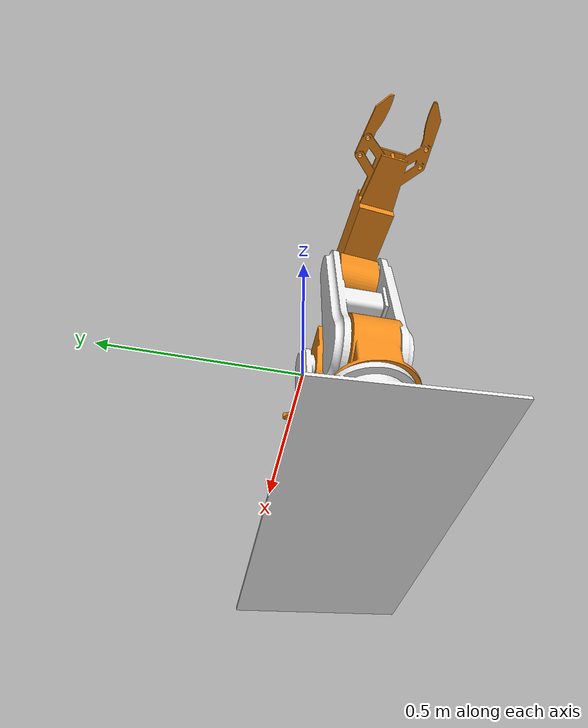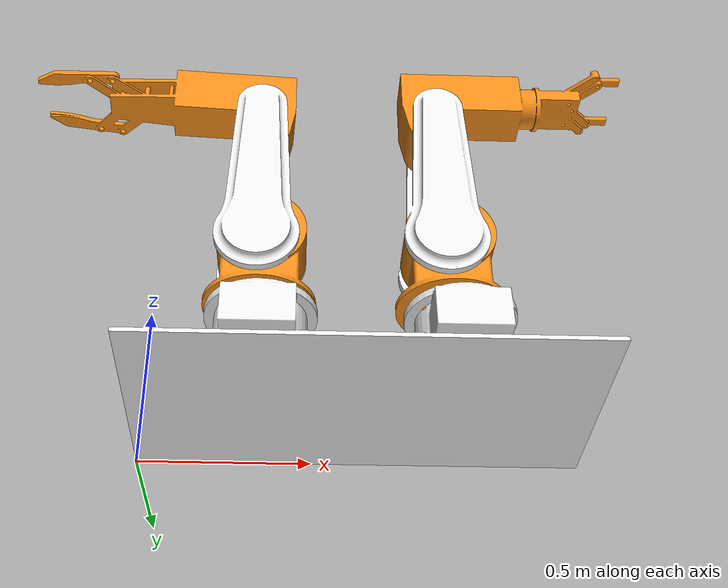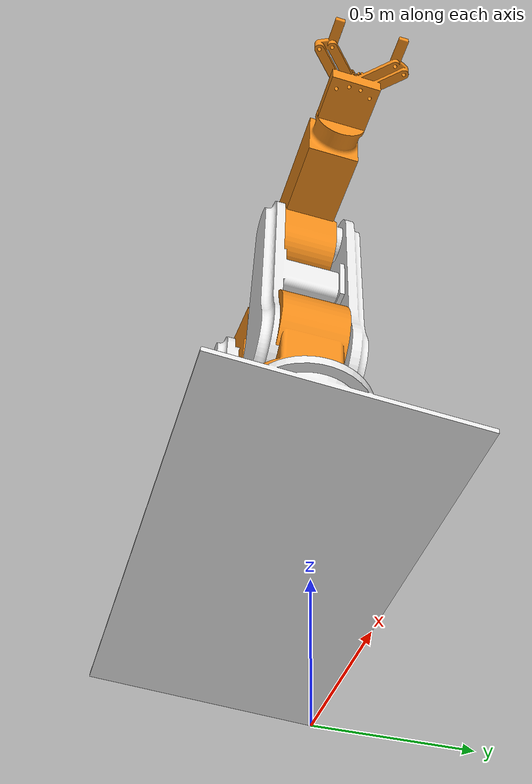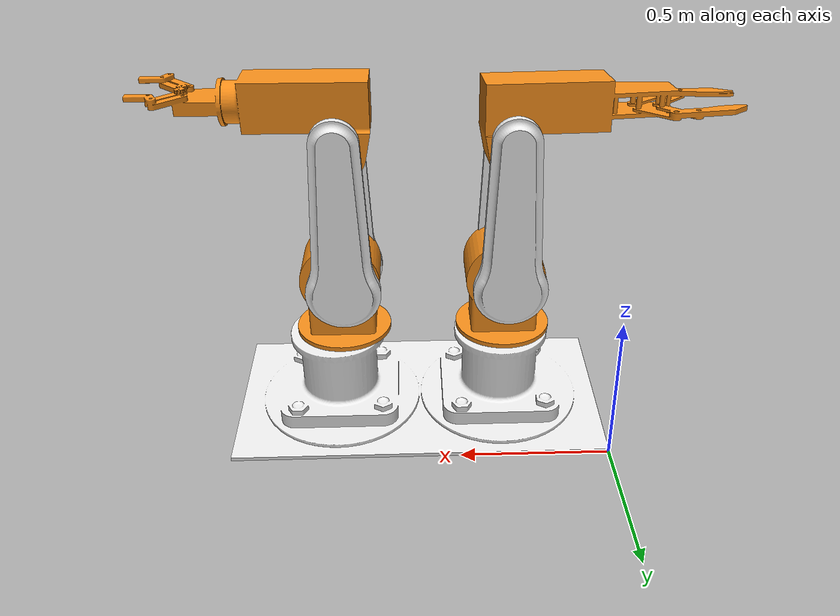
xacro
<?xml version="1.0" ?>

<robot name="mrm" xmlns:xacro="http://www.ros.org/wiki/xacro">

  <!-- BGN - Include -->
  <xacro:include filename="$(find mrm_description)/urdf/robot_parameters.xacro" />
  <xacro:include filename="$(find mrm_description)/urdf/links_joints.xacro" />
  <xacro:include filename="$(find mrm_description)/urdf/materials.xacro" />
  <!-- END - Include -->

  <!-- BGN - Robot description -->
  <m_link_mesh name="${link_00_name}"
              origin_rpy="1.5 0 0" origin_xyz="0 0 0"
              mass="1024"
              ixx="25174" ixy="41" ixz="11"
              iyy="116852" iyz="-1849"
              izz="106504"
              meshfile="package://mrm_description/meshes/Part1.stl"
              meshscale="0.001 0.001 0.001"
              colour="white" />

  <m_joint name="${link_00_name}__${link_01_name}" type="revolute"
           axis_xyz="0 0 1"
           origin_rpy="0 0 0" origin_xyz="0.88 -0.32 0.2"
           parent="base_link" child="link_01"
           limit_e="1000" limit_l="-3.14" limit_u="3.14" limit_v="0.5" />

  <transmission name="trans_${link_00_name}__${link_01_name}" >
    <type>transmission_interface/SimpleTransmission</type>
    <joint name="${link_00_name}__${link_01_name}">
      <hardwareInterface>hardware_interface/PositionJointInterface</hardwareInterface>
    </joint>
    <actuator name="motor_${link_00_name}__${link_01_name}"  >
      <hardwareInterface>hardware_interface/PositionJointInterface</hardwareInterface>
      <mechanicalReduction>1</mechanicalReduction>
    </actuator>
  </transmission>

  <m_link_mesh name="${link_01_name}"
              origin_rpy="1.55 0 0" origin_xyz="-0.15 0.165 0"
              mass="160"
              ixx="20070" ixy="0.2059" ixz="0.0084"
              iyy="7497" iyz="-0.004"
              izz="21939"
              meshfile="package://mrm_description/meshes/Part2.stl"
              meshscale="0.001 0.001 0.001"
              colour="orange"/>

  <m_joint name="${link_01_name}__${link_02_name}" type="revolute"
           axis_xyz="0 1 0"
           origin_rpy="0 0 0" origin_xyz="0 0 0.25"
           parent="link_01" child="link_02"
           limit_e="1000" limit_l="0" limit_u="1" limit_v="1" />

  <transmission name="trans_${link_01_name}__${link_02_name}" >
    <type>transmission_interface/SimpleTransmission</type>
    <joint name="${link_01_name}__${link_02_name}">
      <hardwareInterface>hardware_interface/PositionJointInterface</hardwareInterface>
    </joint>
    <actuator name="motor_${link_01_name}__${link_02_name}"  >
      <hardwareInterface>hardware_interface/PositionJointInterface</hardwareInterface>
      <mechanicalReduction>1</mechanicalReduction>
    </actuator>
  </transmission>

  <m_link_mesh name="${link_02_name}"
              origin_rpy="1.55 0 0" origin_xyz="-0.125 0.16 -0.05"
              mass="122"
              ixx="47789" ixy="0.1653" ixz="-0.027"
              iyy="10943" iyz="0.013"
              izz="40770"
              meshfile="package://mrm_description/meshes/Part3.stl"
              meshscale="0.001 0.001 0.001"
              colour="white" />

  <m_joint name="${link_02_name}__${link_03_name}" type="revolute"
           axis_xyz="0 1 0"
           origin_rpy="0 0 0" origin_xyz="-0.2 0 0.4"
           parent="link_02" child="link_03"
           limit_e="1000" limit_l="0" limit_u="0.5" limit_v="0" />

  <transmission name="trans_${link_02_name}__${link_03_name}" >
    <type>transmission_interface/SimpleTransmission</type>
    <joint name="${link_02_name}__${link_03_name}">
      <hardwareInterface>hardware_interface/PositionJointInterface</hardwareInterface>
    </joint>
    <actuator name="motor_${link_02_name}__${link_03_name}"  >
      <hardwareInterface>hardware_interface/PositionJointInterface</hardwareInterface>
      <mechanicalReduction>1</mechanicalReduction>
    </actuator>
  </transmission>

  <m_link_mesh name="${link_03_name}"
              origin_rpy="1.55 0 0" origin_xyz="0.09 0.37 -0.05"
              mass="216"
              ixx="6322" ixy="-3299" ixz="0.422"
              iyy="24748" iyz="0.0679"
              izz="27524"
              meshfile="package://mrm_description/meshes/Part5.stl"
              meshscale="0.001 0.001 0.001"
              colour="orange"  />

   <m_joint name="${link_00_name}__${link_04_name}" type="revolute"
           axis_xyz="0 0 1"
           origin_rpy="0 0 0" origin_xyz="0.335 -0.32 0.2"
           parent="base_link" child="link_04"
           limit_e="1000" limit_l="-3.14" limit_u="3.14" limit_v="0.5" />

  <transmission name="trans_${link_00_name}__${link_04_name}" >
    <type>transmission_interface/SimpleTransmission</type>
    <joint name="${link_00_name}__${link_04_name}">
      <hardwareInterface>hardware_interface/PositionJointInterface</hardwareInterface>
    </joint>
    <actuator name="motor_${link_00_name}__${link_04_name}"  >
      <hardwareInterface>hardware_interface/PositionJointInterface</hardwareInterface>
      <mechanicalReduction>1</mechanicalReduction>
    </actuator>
  </transmission>

  <m_link_mesh name="${link_04_name}"
              origin_rpy="1.55 0 0" origin_xyz="-0.15 0.165 0"
              mass="160"
              ixx="20070" ixy="0.2059" ixz="0.0084"
              iyy="7497" iyz="-0.004"
              izz="21939"
              meshfile="package://mrm_description/meshes/Part2.stl"
              meshscale="0.001 0.001 0.001"
              colour="orange"/>

   <m_joint name="${link_04_name}__${link_05_name}" type="revolute"
           axis_xyz="0 -1 0"
           origin_rpy="0 0 0" origin_xyz="0 0 0.25"
           parent="link_04" child="link_05"
           limit_e="1000" limit_l="0" limit_u="1" limit_v="1" />

  <transmission name="trans_${link_04_name}__${link_05_name}" >
    <type>transmission_interface/SimpleTransmission</type>
    <joint name="${link_04_name}__${link_05_name}">
      <hardwareInterface>hardware_interface/PositionJointInterface</hardwareInterface>
    </joint>
    <actuator name="motor_${link_04_name}__${link_05_name}"  >
      <hardwareInterface>hardware_interface/PositionJointInterface</hardwareInterface>
      <mechanicalReduction>1</mechanicalReduction>
    </actuator>
  </transmission>

  <m_link_mesh name="${link_05_name}"
              origin_rpy="1.55 0 0" origin_xyz="-0.125 0.16 -0.05"
              mass="122"
              ixx="47789" ixy="0.1653" ixz="-0.027"
              iyy="10943" iyz="0.013"
              izz="40770"
              meshfile="package://mrm_description/meshes/Part3.stl"
              meshscale="0.001 0.001 0.001"
              colour="white" />

  <m_joint name="${link_05_name}__${link_06_name}" type="revolute"
           axis_xyz="0 -1 0"
           origin_rpy="0 0 0" origin_xyz="0 0 0.5"
           parent="link_05" child="link_06"
           limit_e="1000" limit_l="0" limit_u="0.5" limit_v="0" />

  <transmission name="trans_${link_05_name}__${link_06_name}" >
    <type>transmission_interface/SimpleTransmission</type>
    <joint name="${link_05_name}__${link_06_name}">
      <hardwareInterface>hardware_interface/PositionJointInterface</hardwareInterface>
    </joint>
    <actuator name="motor_${link_05_name}__${link_06_name}"  >
      <hardwareInterface>hardware_interface/PositionJointInterface</hardwareInterface>
      <mechanicalReduction>1</mechanicalReduction>
    </actuator>
  </transmission>

  <m_link_mesh name="${link_06_name}"
              origin_rpy="1.55 0 3.2" origin_xyz="0.13 -0.52 -0.23"
              mass="216"
              ixx="6322" ixy="-3299" ixz="0.422"
              iyy="24748" iyz="0.0679"
              izz="27524"
              meshfile="package://mrm_description/meshes/Part6.stl"
              meshscale="0.001 0.001 0.001"
              colour="orange"  />

  <!-- END - Robot description -->

  <gazebo>
    <plugin name="gazebo_ros_control" filename="libgazebo_ros_control.so">
    </plugin>
  </gazebo>

  </robot>

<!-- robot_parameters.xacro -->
<robot xmlns:xacro="http://www.ros.org/wiki/xacro">
  <xacro:property name="link_00_name" value="base_link" />
  <xacro:property name="link_01_name" value="link_01" />
  <xacro:property name="link_02_name" value="link_02" />
  <xacro:property name="link_03_name" value="link_03" />
  <xacro:property name="link_04_name" value="link_04" />
  <xacro:property name="link_05_name" value="link_05" />
  <xacro:property name="link_06_name" value="link_06" />
</robot>

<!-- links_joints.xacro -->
<robot xmlns:xacro="http://www.ros.org/wiki/xacro">

  <xacro:macro name="m_joint" params="name type axis_xyz origin_rpy origin_xyz parent child limit_e limit_l limit_u limit_v">
    <joint name="${name}" type="${type}">
      <axis xyz="${axis_xyz}" />
      <limit effort="${limit_e}" lower="${limit_l}" upper="${limit_u}" velocity="${limit_v}" />
      <origin rpy="${origin_rpy}" xyz="${origin_xyz}" />
      <parent link="${parent}" />
      <child link="${child}" />
    </joint>
    <transmission name="trans_${name}">
      <type>transmission_interface/SimpleTransmission</type>
      <joint name="${name}">
        <hardwareInterface>hardware_interface/EffortJointInterface</hardwareInterface>
      </joint>
      <actuator name="motor_${name}">
        <hardwareInterface>hardware_interface/EffortJointInterface</hardwareInterface>
        <mechanicalReduction>1</mechanicalReduction>
      </actuator>
    </transmission>
  </xacro:macro>

<xacro:macro name="m_link_mesh" params="name origin_xyz origin_rpy meshfile meshscale colour mass ixx ixy ixz iyy iyz izz">
    <link name="${name}">
      <inertial>
        <mass value="${mass}" />
        <origin rpy="${origin_rpy}" xyz="${origin_xyz}" />
        <inertia ixx="${ixx}" ixy="${ixy}" ixz="${ixz}" iyy="${iyy}" iyz="${iyz}" izz="${izz}" />
      </inertial>
      <collision>
        <origin rpy="${origin_rpy}" xyz="${origin_xyz}" />
        <geometry>
          <mesh filename="${meshfile}" scale="${meshscale}"/>
        </geometry>
      </collision>
      <visual>
        <origin rpy="${origin_rpy}" xyz="${origin_xyz}" />
        <geometry>
          <mesh filename="${meshfile}" scale="${meshscale}"/>
        </geometry>
        <material name="${colour}"/>
      </visual>
    </link>
  </xacro:macro>
</robot>
